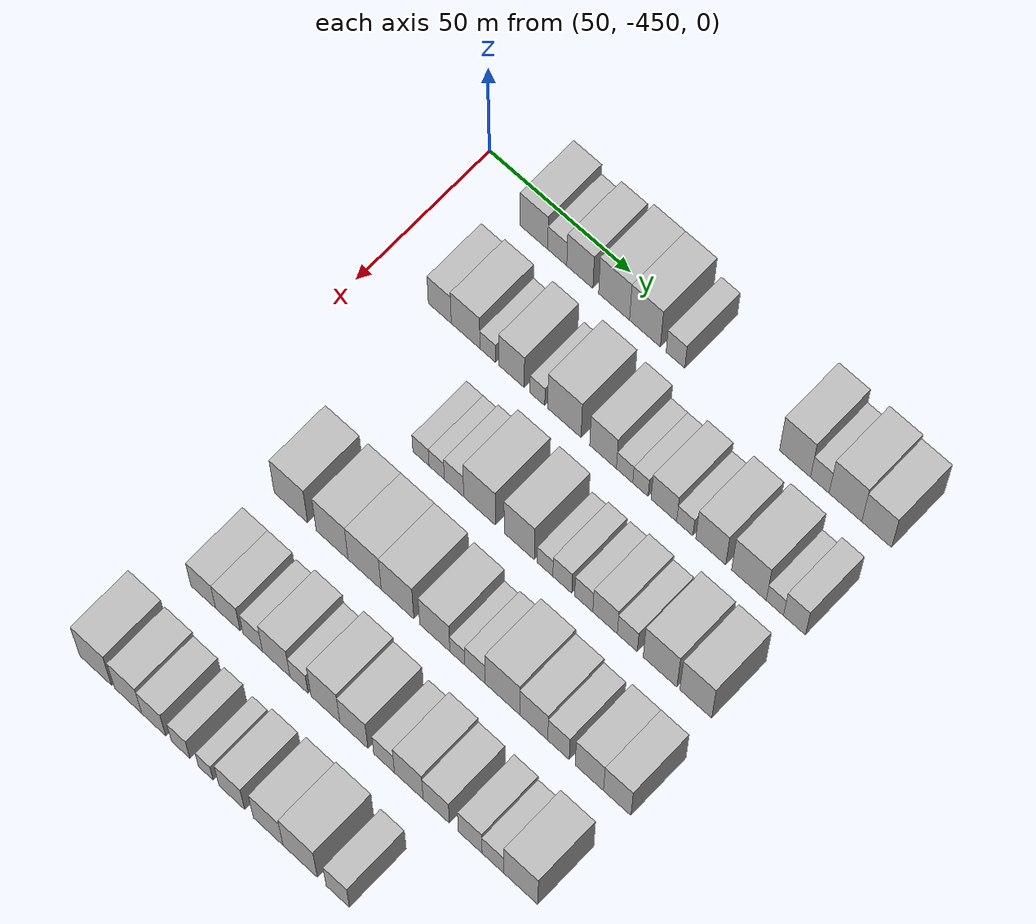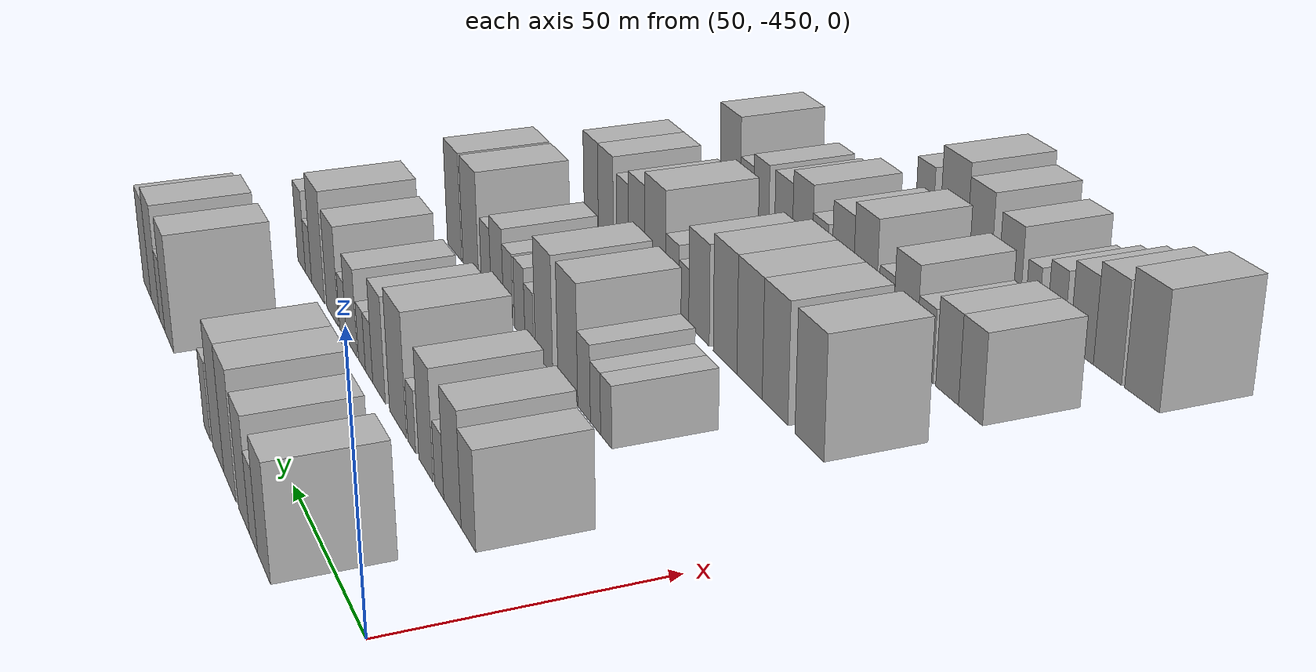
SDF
<sdf version="1.6">
 <world name="default">
  <model name="building_13">
   <static>1</static>
   <pose>50.0000 -424.9100 0 0.000000 0.000000 0.000000</pose>
   <link name="link">
    <pose>0 0 10.50 0 0 0</pose>
    <collision name="collision"><geometry><box><size>20.0000 9.8479 21.0000</size></box></geometry></collision>
    <visual name="visual">
     <cast_shadows>0</cast_shadows>
     <geometry><box><size>20.0000 9.8479 21.0000</size></box></geometry>
     <material>
      <script>
       <uri>model://HANNAS_wall/materials/scripts</uri>
       <uri>model://HANNAS_wall/materials/textures</uri>
       <name>vrc/HANNAS_wall</name>
      </script>
     </material>
    </visual>
   </link>
  </model>
  <model name="building_14">
   <static>1</static>
   <pose>50.0000 -416.6208 0 0.000000 0.000000 0.000000</pose>
   <link name="link">
    <pose>0 0 7.50 0 0 0</pose>
    <collision name="collision"><geometry><box><size>20.0000 6.7304 15.0000</size></box></geometry></collision>
    <visual name="visual">
     <cast_shadows>0</cast_shadows>
     <geometry><box><size>20.0000 6.7304 15.0000</size></box></geometry>
     <material>
      <script>
       <uri>model://HANNAS_wall/materials/scripts</uri>
       <uri>model://HANNAS_wall/materials/textures</uri>
       <name>vrc/HANNAS_wall</name>
      </script>
     </material>
    </visual>
   </link>
  </model>
  <model name="building_15">
   <static>1</static>
   <pose>50.0000 -408.6573 0 0.000000 0.000000 0.000000</pose>
   <link name="link">
    <pose>0 0 10.50 0 0 0</pose>
    <collision name="collision"><geometry><box><size>20.0000 9.1966 21.0000</size></box></geometry></collision>
    <visual name="visual">
     <cast_shadows>0</cast_shadows>
     <geometry><box><size>20.0000 9.1966 21.0000</size></box></geometry>
     <material>
      <script>
       <uri>model://HANNAS_wall/materials/scripts</uri>
       <uri>model://HANNAS_wall/materials/textures</uri>
       <name>vrc/HANNAS_wall</name>
      </script>
     </material>
    </visual>
   </link>
  </model>
  <model name="building_16">
   <static>1</static>
   <pose>50.0000 -396.6379 0 0.000000 0.000000 0.000000</pose>
   <link name="link">
    <pose>0 0 12.00 0 0 0</pose>
    <collision name="collision"><geometry><box><size>20.0000 10.8422 24.0000</size></box></geometry></collision>
    <visual name="visual">
     <cast_shadows>0</cast_shadows>
     <geometry><box><size>20.0000 10.8422 24.0000</size></box></geometry>
     <material>
      <script>
       <uri>model://HANNAS_wall/materials/scripts</uri>
       <uri>model://HANNAS_wall/materials/textures</uri>
       <name>vrc/HANNAS_wall</name>
      </script>
     </material>
    </visual>
   </link>
  </model>
  <model name="building_17">
   <static>1</static>
   <pose>50.0000 -385.8478 0 0.000000 0.000000 0.000000</pose>
   <link name="link">
    <pose>0 0 12.00 0 0 0</pose>
    <collision name="collision"><geometry><box><size>20.0000 10.7379 24.0000</size></box></geometry></collision>
    <visual name="visual">
     <cast_shadows>0</cast_shadows>
     <geometry><box><size>20.0000 10.7379 24.0000</size></box></geometry>
     <material>
      <script>
       <uri>model://HANNAS_wall/materials/scripts</uri>
       <uri>model://HANNAS_wall/materials/textures</uri>
       <name>vrc/HANNAS_wall</name>
      </script>
     </material>
    </visual>
   </link>
  </model>
  <model name="building_18">
   <static>1</static>
   <pose>50.0000 -375.2231 0 0.000000 0.000000 0.000000</pose>
   <link name="link">
    <pose>0 0 7.50 0 0 0</pose>
    <collision name="collision"><geometry><box><size>20.0000 6.5116 15.0000</size></box></geometry></collision>
    <visual name="visual">
     <cast_shadows>0</cast_shadows>
     <geometry><box><size>20.0000 6.5116 15.0000</size></box></geometry>
     <material>
      <script>
       <uri>model://HANNAS_wall/materials/scripts</uri>
       <uri>model://HANNAS_wall/materials/textures</uri>
       <name>vrc/HANNAS_wall</name>
      </script>
     </material>
    </visual>
   </link>
  </model>
  <model name="building_19">
   <static>1</static>
   <pose>50.0000 -334.1305 0 0.000000 0.000000 0.000000</pose>
   <link name="link">
    <pose>0 0 12.00 0 0 0</pose>
    <collision name="collision"><geometry><box><size>20.0000 10.5579 24.0000</size></box></geometry></collision>
    <visual name="visual">
     <cast_shadows>0</cast_shadows>
     <geometry><box><size>20.0000 10.5579 24.0000</size></box></geometry>
     <material>
      <script>
       <uri>model://HANNAS_wall/materials/scripts</uri>
       <uri>model://HANNAS_wall/materials/textures</uri>
       <name>vrc/HANNAS_wall</name>
      </script>
     </material>
    </visual>
   </link>
  </model>
  <model name="building_20">
   <static>1</static>
   <pose>50.0000 -325.7065 0 0.000000 0.000000 0.000000</pose>
   <link name="link">
    <pose>0 0 7.50 0 0 0</pose>
    <collision name="collision"><geometry><box><size>20.0000 6.2900 15.0000</size></box></geometry></collision>
    <visual name="visual">
     <cast_shadows>0</cast_shadows>
     <geometry><box><size>20.0000 6.2900 15.0000</size></box></geometry>
     <material>
      <script>
       <uri>model://HANNAS_wall/materials/scripts</uri>
       <uri>model://HANNAS_wall/materials/textures</uri>
       <name>vrc/HANNAS_wall</name>
      </script>
     </material>
    </visual>
   </link>
  </model>
  <model name="building_21">
   <static>1</static>
   <pose>50.0000 -317.0275 0 0.000000 0.000000 0.000000</pose>
   <link name="link">
    <pose>0 0 12.00 0 0 0</pose>
    <collision name="collision"><geometry><box><size>20.0000 11.0679 24.0000</size></box></geometry></collision>
    <visual name="visual">
     <cast_shadows>0</cast_shadows>
     <geometry><box><size>20.0000 11.0679 24.0000</size></box></geometry>
     <material>
      <script>
       <uri>model://HANNAS_wall/materials/scripts</uri>
       <uri>model://HANNAS_wall/materials/textures</uri>
       <name>vrc/HANNAS_wall</name>
      </script>
     </material>
    </visual>
   </link>
  </model>
  <model name="building_22">
   <static>1</static>
   <pose>50.0000 -306.4596 0 0.000000 0.000000 0.000000</pose>
   <link name="link">
    <pose>0 0 10.50 0 0 0</pose>
    <collision name="collision"><geometry><box><size>20.0000 10.0678 21.0000</size></box></geometry></collision>
    <visual name="visual">
     <cast_shadows>0</cast_shadows>
     <geometry><box><size>20.0000 10.0678 21.0000</size></box></geometry>
     <material>
      <script>
       <uri>model://HANNAS_wall/materials/scripts</uri>
       <uri>model://HANNAS_wall/materials/textures</uri>
       <name>vrc/HANNAS_wall</name>
      </script>
     </material>
    </visual>
   </link>
  </model>
  <model name="building_128">
   <static>1</static>
   <pose>82.0000 -427.9666 0 0.000000 0.000000 0.000000</pose>
   <link name="link">
    <pose>0 0 9.00 0 0 0</pose>
    <collision name="collision"><geometry><box><size>20.0000 8.1594 18.0000</size></box></geometry></collision>
    <visual name="visual">
     <cast_shadows>0</cast_shadows>
     <geometry><box><size>20.0000 8.1594 18.0000</size></box></geometry>
     <material>
      <script>
       <uri>model://HANNAS_wall/materials/scripts</uri>
       <uri>model://HANNAS_wall/materials/textures</uri>
       <name>vrc/HANNAS_wall</name>
      </script>
     </material>
    </visual>
   </link>
  </model>
  <model name="building_129">
   <static>1</static>
   <pose>82.0000 -418.8209 0 0.000000 0.000000 0.000000</pose>
   <link name="link">
    <pose>0 0 10.50 0 0 0</pose>
    <collision name="collision"><geometry><box><size>20.0000 10.1321 21.0000</size></box></geometry></collision>
    <visual name="visual">
     <cast_shadows>0</cast_shadows>
     <geometry><box><size>20.0000 10.1321 21.0000</size></box></geometry>
     <material>
      <script>
       <uri>model://HANNAS_wall/materials/scripts</uri>
       <uri>model://HANNAS_wall/materials/textures</uri>
       <name>vrc/HANNAS_wall</name>
      </script>
     </material>
    </visual>
   </link>
  </model>
  <model name="building_130">
   <static>1</static>
   <pose>82.0000 -410.9679 0 0.000000 0.000000 0.000000</pose>
   <link name="link">
    <pose>0 0 6.00 0 0 0</pose>
    <collision name="collision"><geometry><box><size>20.0000 5.5739 12.0000</size></box></geometry></collision>
    <visual name="visual">
     <cast_shadows>0</cast_shadows>
     <geometry><box><size>20.0000 5.5739 12.0000</size></box></geometry>
     <material>
      <script>
       <uri>model://HANNAS_wall/materials/scripts</uri>
       <uri>model://HANNAS_wall/materials/textures</uri>
       <name>vrc/HANNAS_wall</name>
      </script>
     </material>
    </visual>
   </link>
  </model>
  <model name="building_131">
   <static>1</static>
   <pose>82.0000 -402.6836 0 0.000000 0.000000 0.000000</pose>
   <link name="link">
    <pose>0 0 10.50 0 0 0</pose>
    <collision name="collision"><geometry><box><size>20.0000 8.9948 21.0000</size></box></geometry></collision>
    <visual name="visual">
     <cast_shadows>0</cast_shadows>
     <geometry><box><size>20.0000 8.9948 21.0000</size></box></geometry>
     <material>
      <script>
       <uri>model://HANNAS_wall/materials/scripts</uri>
       <uri>model://HANNAS_wall/materials/textures</uri>
       <name>vrc/HANNAS_wall</name>
      </script>
     </material>
    </visual>
   </link>
  </model>
  <model name="building_132">
   <static>1</static>
   <pose>82.0000 -393.6144 0 0.000000 0.000000 0.000000</pose>
   <link name="link">
    <pose>0 0 6.00 0 0 0</pose>
    <collision name="collision"><geometry><box><size>20.0000 5.1436 12.0000</size></box></geometry></collision>
    <visual name="visual">
     <cast_shadows>0</cast_shadows>
     <geometry><box><size>20.0000 5.1436 12.0000</size></box></geometry>
     <material>
      <script>
       <uri>model://HANNAS_wall/materials/scripts</uri>
       <uri>model://HANNAS_wall/materials/textures</uri>
       <name>vrc/HANNAS_wall</name>
      </script>
     </material>
    </visual>
   </link>
  </model>
  <model name="building_133">
   <static>1</static>
   <pose>82.0000 -384.2282 0 0.000000 0.000000 0.000000</pose>
   <link name="link">
    <pose>0 0 12.00 0 0 0</pose>
    <collision name="collision"><geometry><box><size>20.0000 11.6287 24.0000</size></box></geometry></collision>
    <visual name="visual">
     <cast_shadows>0</cast_shadows>
     <geometry><box><size>20.0000 11.6287 24.0000</size></box></geometry>
     <material>
      <script>
       <uri>model://HANNAS_wall/materials/scripts</uri>
       <uri>model://HANNAS_wall/materials/textures</uri>
       <name>vrc/HANNAS_wall</name>
      </script>
     </material>
    </visual>
   </link>
  </model>
  <model name="building_134">
   <static>1</static>
   <pose>82.0000 -370.8042 0 0.000000 0.000000 0.000000</pose>
   <link name="link">
    <pose>0 0 10.50 0 0 0</pose>
    <collision name="collision"><geometry><box><size>20.0000 9.2194 21.0000</size></box></geometry></collision>
    <visual name="visual">
     <cast_shadows>0</cast_shadows>
     <geometry><box><size>20.0000 9.2194 21.0000</size></box></geometry>
     <material>
      <script>
       <uri>model://HANNAS_wall/materials/scripts</uri>
       <uri>model://HANNAS_wall/materials/textures</uri>
       <name>vrc/HANNAS_wall</name>
      </script>
     </material>
    </visual>
   </link>
  </model>
  <model name="building_135">
   <static>1</static>
   <pose>82.0000 -363.3767 0 0.000000 0.000000 0.000000</pose>
   <link name="link">
    <pose>0 0 6.00 0 0 0</pose>
    <collision name="collision"><geometry><box><size>20.0000 5.6356 12.0000</size></box></geometry></collision>
    <visual name="visual">
     <cast_shadows>0</cast_shadows>
     <geometry><box><size>20.0000 5.6356 12.0000</size></box></geometry>
     <material>
      <script>
       <uri>model://HANNAS_wall/materials/scripts</uri>
       <uri>model://HANNAS_wall/materials/textures</uri>
       <name>vrc/HANNAS_wall</name>
      </script>
     </material>
    </visual>
   </link>
  </model>
  <model name="building_136">
   <static>1</static>
   <pose>82.0000 -357.9130 0 0.000000 0.000000 0.000000</pose>
   <link name="link">
    <pose>0 0 6.00 0 0 0</pose>
    <collision name="collision"><geometry><box><size>20.0000 5.2917 12.0000</size></box></geometry></collision>
    <visual name="visual">
     <cast_shadows>0</cast_shadows>
     <geometry><box><size>20.0000 5.2917 12.0000</size></box></geometry>
     <material>
      <script>
       <uri>model://HANNAS_wall/materials/scripts</uri>
       <uri>model://HANNAS_wall/materials/textures</uri>
       <name>vrc/HANNAS_wall</name>
      </script>
     </material>
    </visual>
   </link>
  </model>
  <model name="building_137">
   <static>1</static>
   <pose>82.0000 -349.8831 0 0.000000 0.000000 0.000000</pose>
   <link name="link">
    <pose>0 0 9.00 0 0 0</pose>
    <collision name="collision"><geometry><box><size>20.0000 8.7682 18.0000</size></box></geometry></collision>
    <visual name="visual">
     <cast_shadows>0</cast_shadows>
     <geometry><box><size>20.0000 8.7682 18.0000</size></box></geometry>
     <material>
      <script>
       <uri>model://HANNAS_wall/materials/scripts</uri>
       <uri>model://HANNAS_wall/materials/textures</uri>
       <name>vrc/HANNAS_wall</name>
      </script>
     </material>
    </visual>
   </link>
  </model>
  <model name="building_138">
   <static>1</static>
   <pose>82.0000 -342.7308 0 0.000000 0.000000 0.000000</pose>
   <link name="link">
    <pose>0 0 6.00 0 0 0</pose>
    <collision name="collision"><geometry><box><size>20.0000 5.5363 12.0000</size></box></geometry></collision>
    <visual name="visual">
     <cast_shadows>0</cast_shadows>
     <geometry><box><size>20.0000 5.5363 12.0000</size></box></geometry>
     <material>
      <script>
       <uri>model://HANNAS_wall/materials/scripts</uri>
       <uri>model://HANNAS_wall/materials/textures</uri>
       <name>vrc/HANNAS_wall</name>
      </script>
     </material>
    </visual>
   </link>
  </model>
  <model name="building_139">
   <static>1</static>
   <pose>82.0000 -333.8696 0 0.000000 0.000000 0.000000</pose>
   <link name="link">
    <pose>0 0 10.50 0 0 0</pose>
    <collision name="collision"><geometry><box><size>20.0000 10.1862 21.0000</size></box></geometry></collision>
    <visual name="visual">
     <cast_shadows>0</cast_shadows>
     <geometry><box><size>20.0000 10.1862 21.0000</size></box></geometry>
     <material>
      <script>
       <uri>model://HANNAS_wall/materials/scripts</uri>
       <uri>model://HANNAS_wall/materials/textures</uri>
       <name>vrc/HANNAS_wall</name>
      </script>
     </material>
    </visual>
   </link>
  </model>
  <model name="building_140">
   <static>1</static>
   <pose>82.0000 -320.9263 0 0.000000 0.000000 0.000000</pose>
   <link name="link">
    <pose>0 0 12.00 0 0 0</pose>
    <collision name="collision"><geometry><box><size>20.0000 11.7004 24.0000</size></box></geometry></collision>
    <visual name="visual">
     <cast_shadows>0</cast_shadows>
     <geometry><box><size>20.0000 11.7004 24.0000</size></box></geometry>
     <material>
      <script>
       <uri>model://HANNAS_wall/materials/scripts</uri>
       <uri>model://HANNAS_wall/materials/textures</uri>
       <name>vrc/HANNAS_wall</name>
      </script>
     </material>
    </visual>
   </link>
  </model>
  <model name="building_141">
   <static>1</static>
   <pose>82.0000 -312.1546 0 0.000000 0.000000 0.000000</pose>
   <link name="link">
    <pose>0 0 6.00 0 0 0</pose>
    <collision name="collision"><geometry><box><size>20.0000 5.8429 12.0000</size></box></geometry></collision>
    <visual name="visual">
     <cast_shadows>0</cast_shadows>
     <geometry><box><size>20.0000 5.8429 12.0000</size></box></geometry>
     <material>
      <script>
       <uri>model://HANNAS_wall/materials/scripts</uri>
       <uri>model://HANNAS_wall/materials/textures</uri>
       <name>vrc/HANNAS_wall</name>
      </script>
     </material>
    </visual>
   </link>
  </model>
  <model name="building_142">
   <static>1</static>
   <pose>82.0000 -305.5435 0 0.000000 0.000000 0.000000</pose>
   <link name="link">
    <pose>0 0 9.00 0 0 0</pose>
    <collision name="collision"><geometry><box><size>20.0000 7.3793 18.0000</size></box></geometry></collision>
    <visual name="visual">
     <cast_shadows>0</cast_shadows>
     <geometry><box><size>20.0000 7.3793 18.0000</size></box></geometry>
     <material>
      <script>
       <uri>model://HANNAS_wall/materials/scripts</uri>
       <uri>model://HANNAS_wall/materials/textures</uri>
       <name>vrc/HANNAS_wall</name>
      </script>
     </material>
    </visual>
   </link>
  </model>
  <model name="building_256">
   <static>1</static>
   <pose>114.0000 -404.0442 0 0.000000 0.000000 0.000000</pose>
   <link name="link">
    <pose>0 0 6.00 0 0 0</pose>
    <collision name="collision"><geometry><box><size>20.0000 5.6613 12.0000</size></box></geometry></collision>
    <visual name="visual">
     <cast_shadows>0</cast_shadows>
     <geometry><box><size>20.0000 5.6613 12.0000</size></box></geometry>
     <material>
      <script>
       <uri>model://HANNAS_wall/materials/scripts</uri>
       <uri>model://HANNAS_wall/materials/textures</uri>
       <name>vrc/HANNAS_wall</name>
      </script>
     </material>
    </visual>
   </link>
  </model>
  <model name="building_257">
   <static>1</static>
   <pose>114.0000 -398.5400 0 0.000000 0.000000 0.000000</pose>
   <link name="link">
    <pose>0 0 6.00 0 0 0</pose>
    <collision name="collision"><geometry><box><size>20.0000 5.3472 12.0000</size></box></geometry></collision>
    <visual name="visual">
     <cast_shadows>0</cast_shadows>
     <geometry><box><size>20.0000 5.3472 12.0000</size></box></geometry>
     <material>
      <script>
       <uri>model://HANNAS_wall/materials/scripts</uri>
       <uri>model://HANNAS_wall/materials/textures</uri>
       <name>vrc/HANNAS_wall</name>
      </script>
     </material>
    </visual>
   </link>
  </model>
  <model name="building_258">
   <static>1</static>
   <pose>114.0000 -392.4809 0 0.000000 0.000000 0.000000</pose>
   <link name="link">
    <pose>0 0 7.50 0 0 0</pose>
    <collision name="collision"><geometry><box><size>20.0000 6.7709 15.0000</size></box></geometry></collision>
    <visual name="visual">
     <cast_shadows>0</cast_shadows>
     <geometry><box><size>20.0000 6.7709 15.0000</size></box></geometry>
     <material>
      <script>
       <uri>model://HANNAS_wall/materials/scripts</uri>
       <uri>model://HANNAS_wall/materials/textures</uri>
       <name>vrc/HANNAS_wall</name>
      </script>
     </material>
    </visual>
   </link>
  </model>
  <model name="building_259">
   <static>1</static>
   <pose>114.0000 -383.5652 0 0.000000 0.000000 0.000000</pose>
   <link name="link">
    <pose>0 0 12.00 0 0 0</pose>
    <collision name="collision"><geometry><box><size>20.0000 11.0605 24.0000</size></box></geometry></collision>
    <visual name="visual">
     <cast_shadows>0</cast_shadows>
     <geometry><box><size>20.0000 11.0605 24.0000</size></box></geometry>
     <material>
      <script>
       <uri>model://HANNAS_wall/materials/scripts</uri>
       <uri>model://HANNAS_wall/materials/textures</uri>
       <name>vrc/HANNAS_wall</name>
      </script>
     </material>
    </visual>
   </link>
  </model>
  <model name="building_260">
   <static>1</static>
   <pose>114.0000 -369.8477 0 0.000000 0.000000 0.000000</pose>
   <link name="link">
    <pose>0 0 12.00 0 0 0</pose>
    <collision name="collision"><geometry><box><size>20.0000 10.3744 24.0000</size></box></geometry></collision>
    <visual name="visual">
     <cast_shadows>0</cast_shadows>
     <geometry><box><size>20.0000 10.3744 24.0000</size></box></geometry>
     <material>
      <script>
       <uri>model://HANNAS_wall/materials/scripts</uri>
       <uri>model://HANNAS_wall/materials/textures</uri>
       <name>vrc/HANNAS_wall</name>
      </script>
     </material>
    </visual>
   </link>
  </model>
  <model name="building_261">
   <static>1</static>
   <pose>114.0000 -360.9784 0 0.000000 0.000000 0.000000</pose>
   <link name="link">
    <pose>0 0 6.00 0 0 0</pose>
    <collision name="collision"><geometry><box><size>20.0000 5.3643 12.0000</size></box></geometry></collision>
    <visual name="visual">
     <cast_shadows>0</cast_shadows>
     <geometry><box><size>20.0000 5.3643 12.0000</size></box></geometry>
     <material>
      <script>
       <uri>model://HANNAS_wall/materials/scripts</uri>
       <uri>model://HANNAS_wall/materials/textures</uri>
       <name>vrc/HANNAS_wall</name>
      </script>
     </material>
    </visual>
   </link>
  </model>
  <model name="building_262">
   <static>1</static>
   <pose>114.0000 -355.0479 0 0.000000 0.000000 0.000000</pose>
   <link name="link">
    <pose>0 0 7.50 0 0 0</pose>
    <collision name="collision"><geometry><box><size>20.0000 6.4966 15.0000</size></box></geometry></collision>
    <visual name="visual">
     <cast_shadows>0</cast_shadows>
     <geometry><box><size>20.0000 6.4966 15.0000</size></box></geometry>
     <material>
      <script>
       <uri>model://HANNAS_wall/materials/scripts</uri>
       <uri>model://HANNAS_wall/materials/textures</uri>
       <name>vrc/HANNAS_wall</name>
      </script>
     </material>
    </visual>
   </link>
  </model>
  <model name="building_263">
   <static>1</static>
   <pose>114.0000 -347.7049 0 0.000000 0.000000 0.000000</pose>
   <link name="link">
    <pose>0 0 7.50 0 0 0</pose>
    <collision name="collision"><geometry><box><size>20.0000 6.1894 15.0000</size></box></geometry></collision>
    <visual name="visual">
     <cast_shadows>0</cast_shadows>
     <geometry><box><size>20.0000 6.1894 15.0000</size></box></geometry>
     <material>
      <script>
       <uri>model://HANNAS_wall/materials/scripts</uri>
       <uri>model://HANNAS_wall/materials/textures</uri>
       <name>vrc/HANNAS_wall</name>
      </script>
     </material>
    </visual>
   </link>
  </model>
  <model name="building_264">
   <static>1</static>
   <pose>114.0000 -340.4233 0 0.000000 0.000000 0.000000</pose>
   <link name="link">
    <pose>0 0 9.00 0 0 0</pose>
    <collision name="collision"><geometry><box><size>20.0000 8.3737 18.0000</size></box></geometry></collision>
    <visual name="visual">
     <cast_shadows>0</cast_shadows>
     <geometry><box><size>20.0000 8.3737 18.0000</size></box></geometry>
     <material>
      <script>
       <uri>model://HANNAS_wall/materials/scripts</uri>
       <uri>model://HANNAS_wall/materials/textures</uri>
       <name>vrc/HANNAS_wall</name>
      </script>
     </material>
    </visual>
   </link>
  </model>
  <model name="building_265">
   <static>1</static>
   <pose>114.0000 -332.8501 0 0.000000 0.000000 0.000000</pose>
   <link name="link">
    <pose>0 0 7.50 0 0 0</pose>
    <collision name="collision"><geometry><box><size>20.0000 6.7725 15.0000</size></box></geometry></collision>
    <visual name="visual">
     <cast_shadows>0</cast_shadows>
     <geometry><box><size>20.0000 6.7725 15.0000</size></box></geometry>
     <material>
      <script>
       <uri>model://HANNAS_wall/materials/scripts</uri>
       <uri>model://HANNAS_wall/materials/textures</uri>
       <name>vrc/HANNAS_wall</name>
      </script>
     </material>
    </visual>
   </link>
  </model>
  <model name="building_266">
   <static>1</static>
   <pose>114.0000 -321.7629 0 0.000000 0.000000 0.000000</pose>
   <link name="link">
    <pose>0 0 12.00 0 0 0</pose>
    <collision name="collision"><geometry><box><size>20.0000 11.4020 24.0000</size></box></geometry></collision>
    <visual name="visual">
     <cast_shadows>0</cast_shadows>
     <geometry><box><size>20.0000 11.4020 24.0000</size></box></geometry>
     <material>
      <script>
       <uri>model://HANNAS_wall/materials/scripts</uri>
       <uri>model://HANNAS_wall/materials/textures</uri>
       <name>vrc/HANNAS_wall</name>
      </script>
     </material>
    </visual>
   </link>
  </model>
  <model name="building_267">
   <static>1</static>
   <pose>114.0000 -309.7037 0 0.000000 0.000000 0.000000</pose>
   <link name="link">
    <pose>0 0 12.00 0 0 0</pose>
    <collision name="collision"><geometry><box><size>20.0000 10.7164 24.0000</size></box></geometry></collision>
    <visual name="visual">
     <cast_shadows>0</cast_shadows>
     <geometry><box><size>20.0000 10.7164 24.0000</size></box></geometry>
     <material>
      <script>
       <uri>model://HANNAS_wall/materials/scripts</uri>
       <uri>model://HANNAS_wall/materials/textures</uri>
       <name>vrc/HANNAS_wall</name>
      </script>
     </material>
    </visual>
   </link>
  </model>
  <model name="building_371">
   <static>1</static>
   <pose>146.0000 -418.8518 0 0.000000 0.000000 0.000000</pose>
   <link name="link">
    <pose>0 0 12.00 0 0 0</pose>
    <collision name="collision"><geometry><box><size>20.0000 11.7782 24.0000</size></box></geometry></collision>
    <visual name="visual">
     <cast_shadows>0</cast_shadows>
     <geometry><box><size>20.0000 11.7782 24.0000</size></box></geometry>
     <material>
      <script>
       <uri>model://HANNAS_wall/materials/scripts</uri>
       <uri>model://HANNAS_wall/materials/textures</uri>
       <name>vrc/HANNAS_wall</name>
      </script>
     </material>
    </visual>
   </link>
  </model>
  <model name="building_372">
   <static>1</static>
   <pose>146.0000 -404.3838 0 0.000000 0.000000 0.000000</pose>
   <link name="link">
    <pose>0 0 12.00 0 0 0</pose>
    <collision name="collision"><geometry><box><size>20.0000 11.1579 24.0000</size></box></geometry></collision>
    <visual name="visual">
     <cast_shadows>0</cast_shadows>
     <geometry><box><size>20.0000 11.1579 24.0000</size></box></geometry>
     <material>
      <script>
       <uri>model://HANNAS_wall/materials/scripts</uri>
       <uri>model://HANNAS_wall/materials/textures</uri>
       <name>vrc/HANNAS_wall</name>
      </script>
     </material>
    </visual>
   </link>
  </model>
  <model name="building_373">
   <static>1</static>
   <pose>146.0000 -393.0157 0 0.000000 0.000000 0.000000</pose>
   <link name="link">
    <pose>0 0 12.00 0 0 0</pose>
    <collision name="collision"><geometry><box><size>20.0000 11.5784 24.0000</size></box></geometry></collision>
    <visual name="visual">
     <cast_shadows>0</cast_shadows>
     <geometry><box><size>20.0000 11.5784 24.0000</size></box></geometry>
     <material>
      <script>
       <uri>model://HANNAS_wall/materials/scripts</uri>
       <uri>model://HANNAS_wall/materials/textures</uri>
       <name>vrc/HANNAS_wall</name>
      </script>
     </material>
    </visual>
   </link>
  </model>
  <model name="building_374">
   <static>1</static>
   <pose>146.0000 -381.5420 0 0.000000 0.000000 0.000000</pose>
   <link name="link">
    <pose>0 0 12.00 0 0 0</pose>
    <collision name="collision"><geometry><box><size>20.0000 11.3690 24.0000</size></box></geometry></collision>
    <visual name="visual">
     <cast_shadows>0</cast_shadows>
     <geometry><box><size>20.0000 11.3690 24.0000</size></box></geometry>
     <material>
      <script>
       <uri>model://HANNAS_wall/materials/scripts</uri>
       <uri>model://HANNAS_wall/materials/textures</uri>
       <name>vrc/HANNAS_wall</name>
      </script>
     </material>
    </visual>
   </link>
  </model>
  <model name="building_375">
   <static>1</static>
   <pose>146.0000 -368.6620 0 0.000000 0.000000 0.000000</pose>
   <link name="link">
    <pose>0 0 10.50 0 0 0</pose>
    <collision name="collision"><geometry><box><size>20.0000 10.3909 21.0000</size></box></geometry></collision>
    <visual name="visual">
     <cast_shadows>0</cast_shadows>
     <geometry><box><size>20.0000 10.3909 21.0000</size></box></geometry>
     <material>
      <script>
       <uri>model://HANNAS_wall/materials/scripts</uri>
       <uri>model://HANNAS_wall/materials/textures</uri>
       <name>vrc/HANNAS_wall</name>
      </script>
     </material>
    </visual>
   </link>
  </model>
  <model name="building_376">
   <static>1</static>
   <pose>146.0000 -360.8914 0 0.000000 0.000000 0.000000</pose>
   <link name="link">
    <pose>0 0 6.00 0 0 0</pose>
    <collision name="collision"><geometry><box><size>20.0000 5.1503 12.0000</size></box></geometry></collision>
    <visual name="visual">
     <cast_shadows>0</cast_shadows>
     <geometry><box><size>20.0000 5.1503 12.0000</size></box></geometry>
     <material>
      <script>
       <uri>model://HANNAS_wall/materials/scripts</uri>
       <uri>model://HANNAS_wall/materials/textures</uri>
       <name>vrc/HANNAS_wall</name>
      </script>
     </material>
    </visual>
   </link>
  </model>
  <model name="building_377">
   <static>1</static>
   <pose>146.0000 -354.8184 0 0.000000 0.000000 0.000000</pose>
   <link name="link">
    <pose>0 0 7.50 0 0 0</pose>
    <collision name="collision"><geometry><box><size>20.0000 6.9958 15.0000</size></box></geometry></collision>
    <visual name="visual">
     <cast_shadows>0</cast_shadows>
     <geometry><box><size>20.0000 6.9958 15.0000</size></box></geometry>
     <material>
      <script>
       <uri>model://HANNAS_wall/materials/scripts</uri>
       <uri>model://HANNAS_wall/materials/textures</uri>
       <name>vrc/HANNAS_wall</name>
      </script>
     </material>
    </visual>
   </link>
  </model>
  <model name="building_378">
   <static>1</static>
   <pose>146.0000 -345.4421 0 0.000000 0.000000 0.000000</pose>
   <link name="link">
    <pose>0 0 12.00 0 0 0</pose>
    <collision name="collision"><geometry><box><size>20.0000 11.7567 24.0000</size></box></geometry></collision>
    <visual name="visual">
     <cast_shadows>0</cast_shadows>
     <geometry><box><size>20.0000 11.7567 24.0000</size></box></geometry>
     <material>
      <script>
       <uri>model://HANNAS_wall/materials/scripts</uri>
       <uri>model://HANNAS_wall/materials/textures</uri>
       <name>vrc/HANNAS_wall</name>
      </script>
     </material>
    </visual>
   </link>
  </model>
  <model name="building_379">
   <static>1</static>
   <pose>146.0000 -334.8085 0 0.000000 0.000000 0.000000</pose>
   <link name="link">
    <pose>0 0 10.50 0 0 0</pose>
    <collision name="collision"><geometry><box><size>20.0000 9.5105 21.0000</size></box></geometry></collision>
    <visual name="visual">
     <cast_shadows>0</cast_shadows>
     <geometry><box><size>20.0000 9.5105 21.0000</size></box></geometry>
     <material>
      <script>
       <uri>model://HANNAS_wall/materials/scripts</uri>
       <uri>model://HANNAS_wall/materials/textures</uri>
       <name>vrc/HANNAS_wall</name>
      </script>
     </material>
    </visual>
   </link>
  </model>
  <model name="building_380">
   <static>1</static>
   <pose>146.0000 -326.4280 0 0.000000 0.000000 0.000000</pose>
   <link name="link">
    <pose>0 0 9.00 0 0 0</pose>
    <collision name="collision"><geometry><box><size>20.0000 7.2506 18.0000</size></box></geometry></collision>
    <visual name="visual">
     <cast_shadows>0</cast_shadows>
     <geometry><box><size>20.0000 7.2506 18.0000</size></box></geometry>
     <material>
      <script>
       <uri>model://HANNAS_wall/materials/scripts</uri>
       <uri>model://HANNAS_wall/materials/textures</uri>
       <name>vrc/HANNAS_wall</name>
      </script>
     </material>
    </visual>
   </link>
  </model>
  <model name="building_381">
   <static>1</static>
   <pose>146.0000 -316.0356 0 0.000000 0.000000 0.000000</pose>
   <link name="link">
    <pose>0 0 10.50 0 0 0</pose>
    <collision name="collision"><geometry><box><size>20.0000 9.5342 21.0000</size></box></geometry></collision>
    <visual name="visual">
     <cast_shadows>0</cast_shadows>
     <geometry><box><size>20.0000 9.5342 21.0000</size></box></geometry>
     <material>
      <script>
       <uri>model://HANNAS_wall/materials/scripts</uri>
       <uri>model://HANNAS_wall/materials/textures</uri>
       <name>vrc/HANNAS_wall</name>
      </script>
     </material>
    </visual>
   </link>
  </model>
  <model name="building_382">
   <static>1</static>
   <pose>146.0000 -306.6569 0 0.000000 0.000000 0.000000</pose>
   <link name="link">
    <pose>0 0 10.50 0 0 0</pose>
    <collision name="collision"><geometry><box><size>20.0000 9.2231 21.0000</size></box></geometry></collision>
    <visual name="visual">
     <cast_shadows>0</cast_shadows>
     <geometry><box><size>20.0000 9.2231 21.0000</size></box></geometry>
     <material>
      <script>
       <uri>model://HANNAS_wall/materials/scripts</uri>
       <uri>model://HANNAS_wall/materials/textures</uri>
       <name>vrc/HANNAS_wall</name>
      </script>
     </material>
    </visual>
   </link>
  </model>
  <model name="building_493">
   <static>1</static>
   <pose>178.0000 -418.2650 0 0.000000 0.000000 0.000000</pose>
   <link name="link">
    <pose>0 0 9.00 0 0 0</pose>
    <collision name="collision"><geometry><box><size>20.0000 8.7161 18.0000</size></box></geometry></collision>
    <visual name="visual">
     <cast_shadows>0</cast_shadows>
     <geometry><box><size>20.0000 8.7161 18.0000</size></box></geometry>
     <material>
      <script>
       <uri>model://HANNAS_wall/materials/scripts</uri>
       <uri>model://HANNAS_wall/materials/textures</uri>
       <name>vrc/HANNAS_wall</name>
      </script>
     </material>
    </visual>
   </link>
  </model>
  <model name="building_494">
   <static>1</static>
   <pose>178.0000 -409.6000 0 0.000000 0.000000 0.000000</pose>
   <link name="link">
    <pose>0 0 9.00 0 0 0</pose>
    <collision name="collision"><geometry><box><size>20.0000 8.6140 18.0000</size></box></geometry></collision>
    <visual name="visual">
     <cast_shadows>0</cast_shadows>
     <geometry><box><size>20.0000 8.6140 18.0000</size></box></geometry>
     <material>
      <script>
       <uri>model://HANNAS_wall/materials/scripts</uri>
       <uri>model://HANNAS_wall/materials/textures</uri>
       <name>vrc/HANNAS_wall</name>
      </script>
     </material>
    </visual>
   </link>
  </model>
  <model name="building_495">
   <static>1</static>
   <pose>178.0000 -400.8982 0 0.000000 0.000000 0.000000</pose>
   <link name="link">
    <pose>0 0 7.50 0 0 0</pose>
    <collision name="collision"><geometry><box><size>20.0000 6.7895 15.0000</size></box></geometry></collision>
    <visual name="visual">
     <cast_shadows>0</cast_shadows>
     <geometry><box><size>20.0000 6.7895 15.0000</size></box></geometry>
     <material>
      <script>
       <uri>model://HANNAS_wall/materials/scripts</uri>
       <uri>model://HANNAS_wall/materials/textures</uri>
       <name>vrc/HANNAS_wall</name>
      </script>
     </material>
    </visual>
   </link>
  </model>
  <model name="building_496">
   <static>1</static>
   <pose>178.0000 -392.7082 0 0.000000 0.000000 0.000000</pose>
   <link name="link">
    <pose>0 0 10.50 0 0 0</pose>
    <collision name="collision"><geometry><box><size>20.0000 9.5905 21.0000</size></box></geometry></collision>
    <visual name="visual">
     <cast_shadows>0</cast_shadows>
     <geometry><box><size>20.0000 9.5905 21.0000</size></box></geometry>
     <material>
      <script>
       <uri>model://HANNAS_wall/materials/scripts</uri>
       <uri>model://HANNAS_wall/materials/textures</uri>
       <name>vrc/HANNAS_wall</name>
      </script>
     </material>
    </visual>
   </link>
  </model>
  <model name="building_497">
   <static>1</static>
   <pose>178.0000 -384.7665 0 0.000000 0.000000 0.000000</pose>
   <link name="link">
    <pose>0 0 7.50 0 0 0</pose>
    <collision name="collision"><geometry><box><size>20.0000 6.2930 15.0000</size></box></geometry></collision>
    <visual name="visual">
     <cast_shadows>0</cast_shadows>
     <geometry><box><size>20.0000 6.2930 15.0000</size></box></geometry>
     <material>
      <script>
       <uri>model://HANNAS_wall/materials/scripts</uri>
       <uri>model://HANNAS_wall/materials/textures</uri>
       <name>vrc/HANNAS_wall</name>
      </script>
     </material>
    </visual>
   </link>
  </model>
  <model name="building_498">
   <static>1</static>
   <pose>178.0000 -375.6212 0 0.000000 0.000000 0.000000</pose>
   <link name="link">
    <pose>0 0 12.00 0 0 0</pose>
    <collision name="collision"><geometry><box><size>20.0000 9.9977 24.0000</size></box></geometry></collision>
    <visual name="visual">
     <cast_shadows>0</cast_shadows>
     <geometry><box><size>20.0000 9.9977 24.0000</size></box></geometry>
     <material>
      <script>
       <uri>model://HANNAS_wall/materials/scripts</uri>
       <uri>model://HANNAS_wall/materials/textures</uri>
       <name>vrc/HANNAS_wall</name>
      </script>
     </material>
    </visual>
   </link>
  </model>
  <model name="building_499">
   <static>1</static>
   <pose>178.0000 -365.7957 0 0.000000 0.000000 0.000000</pose>
   <link name="link">
    <pose>0 0 10.50 0 0 0</pose>
    <collision name="collision"><geometry><box><size>20.0000 9.6533 21.0000</size></box></geometry></collision>
    <visual name="visual">
     <cast_shadows>0</cast_shadows>
     <geometry><box><size>20.0000 9.6533 21.0000</size></box></geometry>
     <material>
      <script>
       <uri>model://HANNAS_wall/materials/scripts</uri>
       <uri>model://HANNAS_wall/materials/textures</uri>
       <name>vrc/HANNAS_wall</name>
      </script>
     </material>
    </visual>
   </link>
  </model>
  <model name="building_500">
   <static>1</static>
   <pose>178.0000 -355.4023 0 0.000000 0.000000 0.000000</pose>
   <link name="link">
    <pose>0 0 7.50 0 0 0</pose>
    <collision name="collision"><geometry><box><size>20.0000 7.1336 15.0000</size></box></geometry></collision>
    <visual name="visual">
     <cast_shadows>0</cast_shadows>
     <geometry><box><size>20.0000 7.1336 15.0000</size></box></geometry>
     <material>
      <script>
       <uri>model://HANNAS_wall/materials/scripts</uri>
       <uri>model://HANNAS_wall/materials/textures</uri>
       <name>vrc/HANNAS_wall</name>
      </script>
     </material>
    </visual>
   </link>
  </model>
  <model name="building_501">
   <static>1</static>
   <pose>178.0000 -346.9573 0 0.000000 0.000000 0.000000</pose>
   <link name="link">
    <pose>0 0 10.50 0 0 0</pose>
    <collision name="collision"><geometry><box><size>20.0000 9.7563 21.0000</size></box></geometry></collision>
    <visual name="visual">
     <cast_shadows>0</cast_shadows>
     <geometry><box><size>20.0000 9.7563 21.0000</size></box></geometry>
     <material>
      <script>
       <uri>model://HANNAS_wall/materials/scripts</uri>
       <uri>model://HANNAS_wall/materials/textures</uri>
       <name>vrc/HANNAS_wall</name>
      </script>
     </material>
    </visual>
   </link>
  </model>
  <model name="building_502">
   <static>1</static>
   <pose>178.0000 -337.6042 0 0.000000 0.000000 0.000000</pose>
   <link name="link">
    <pose>0 0 9.00 0 0 0</pose>
    <collision name="collision"><geometry><box><size>20.0000 8.9500 18.0000</size></box></geometry></collision>
    <visual name="visual">
     <cast_shadows>0</cast_shadows>
     <geometry><box><size>20.0000 8.9500 18.0000</size></box></geometry>
     <material>
      <script>
       <uri>model://HANNAS_wall/materials/scripts</uri>
       <uri>model://HANNAS_wall/materials/textures</uri>
       <name>vrc/HANNAS_wall</name>
      </script>
     </material>
    </visual>
   </link>
  </model>
  <model name="building_503">
   <static>1</static>
   <pose>178.0000 -326.1161 0 0.000000 0.000000 0.000000</pose>
   <link name="link">
    <pose>0 0 9.00 0 0 0</pose>
    <collision name="collision"><geometry><box><size>20.0000 8.0262 18.0000</size></box></geometry></collision>
    <visual name="visual">
     <cast_shadows>0</cast_shadows>
     <geometry><box><size>20.0000 8.0262 18.0000</size></box></geometry>
     <material>
      <script>
       <uri>model://HANNAS_wall/materials/scripts</uri>
       <uri>model://HANNAS_wall/materials/textures</uri>
       <name>vrc/HANNAS_wall</name>
      </script>
     </material>
    </visual>
   </link>
  </model>
  <model name="building_504">
   <static>1</static>
   <pose>178.0000 -318.4364 0 0.000000 0.000000 0.000000</pose>
   <link name="link">
    <pose>0 0 7.50 0 0 0</pose>
    <collision name="collision"><geometry><box><size>20.0000 7.3331 15.0000</size></box></geometry></collision>
    <visual name="visual">
     <cast_shadows>0</cast_shadows>
     <geometry><box><size>20.0000 7.3331 15.0000</size></box></geometry>
     <material>
      <script>
       <uri>model://HANNAS_wall/materials/scripts</uri>
       <uri>model://HANNAS_wall/materials/textures</uri>
       <name>vrc/HANNAS_wall</name>
      </script>
     </material>
    </visual>
   </link>
  </model>
  <model name="building_505">
   <static>1</static>
   <pose>178.0000 -309.0655 0 0.000000 0.000000 0.000000</pose>
   <link name="link">
    <pose>0 0 12.00 0 0 0</pose>
    <collision name="collision"><geometry><box><size>20.0000 11.4088 24.0000</size></box></geometry></collision>
    <visual name="visual">
     <cast_shadows>0</cast_shadows>
     <geometry><box><size>20.0000 11.4088 24.0000</size></box></geometry>
     <material>
      <script>
       <uri>model://HANNAS_wall/materials/scripts</uri>
       <uri>model://HANNAS_wall/materials/textures</uri>
       <name>vrc/HANNAS_wall</name>
      </script>
     </material>
    </visual>
   </link>
  </model>
  <model name="building_607">
   <static>1</static>
   <pose>210.0000 -424.1628 0 0.000000 0.000000 0.000000</pose>
   <link name="link">
    <pose>0 0 12.00 0 0 0</pose>
    <collision name="collision"><geometry><box><size>20.0000 11.2664 24.0000</size></box></geometry></collision>
    <visual name="visual">
     <cast_shadows>0</cast_shadows>
     <geometry><box><size>20.0000 11.2664 24.0000</size></box></geometry>
     <material>
      <script>
       <uri>model://HANNAS_wall/materials/scripts</uri>
       <uri>model://HANNAS_wall/materials/textures</uri>
       <name>vrc/HANNAS_wall</name>
      </script>
     </material>
    </visual>
   </link>
  </model>
  <model name="building_608">
   <static>1</static>
   <pose>210.0000 -412.7483 0 0.000000 0.000000 0.000000</pose>
   <link name="link">
    <pose>0 0 10.50 0 0 0</pose>
    <collision name="collision"><geometry><box><size>20.0000 9.5627 21.0000</size></box></geometry></collision>
    <visual name="visual">
     <cast_shadows>0</cast_shadows>
     <geometry><box><size>20.0000 9.5627 21.0000</size></box></geometry>
     <material>
      <script>
       <uri>model://HANNAS_wall/materials/scripts</uri>
       <uri>model://HANNAS_wall/materials/textures</uri>
       <name>vrc/HANNAS_wall</name>
      </script>
     </material>
    </visual>
   </link>
  </model>
  <model name="building_609">
   <static>1</static>
   <pose>210.0000 -403.7681 0 0.000000 0.000000 0.000000</pose>
   <link name="link">
    <pose>0 0 9.00 0 0 0</pose>
    <collision name="collision"><geometry><box><size>20.0000 8.3977 18.0000</size></box></geometry></collision>
    <visual name="visual">
     <cast_shadows>0</cast_shadows>
     <geometry><box><size>20.0000 8.3977 18.0000</size></box></geometry>
     <material>
      <script>
       <uri>model://HANNAS_wall/materials/scripts</uri>
       <uri>model://HANNAS_wall/materials/textures</uri>
       <name>vrc/HANNAS_wall</name>
      </script>
     </material>
    </visual>
   </link>
  </model>
  <model name="building_610">
   <static>1</static>
   <pose>210.0000 -394.3635 0 0.000000 0.000000 0.000000</pose>
   <link name="link">
    <pose>0 0 7.50 0 0 0</pose>
    <collision name="collision"><geometry><box><size>20.0000 6.4116 15.0000</size></box></geometry></collision>
    <visual name="visual">
     <cast_shadows>0</cast_shadows>
     <geometry><box><size>20.0000 6.4116 15.0000</size></box></geometry>
     <material>
      <script>
       <uri>model://HANNAS_wall/materials/scripts</uri>
       <uri>model://HANNAS_wall/materials/textures</uri>
       <name>vrc/HANNAS_wall</name>
      </script>
     </material>
    </visual>
   </link>
  </model>
  <model name="building_611">
   <static>1</static>
   <pose>210.0000 -385.5994 0 0.000000 0.000000 0.000000</pose>
   <link name="link">
    <pose>0 0 6.00 0 0 0</pose>
    <collision name="collision"><geometry><box><size>20.0000 5.1166 12.0000</size></box></geometry></collision>
    <visual name="visual">
     <cast_shadows>0</cast_shadows>
     <geometry><box><size>20.0000 5.1166 12.0000</size></box></geometry>
     <material>
      <script>
       <uri>model://HANNAS_wall/materials/scripts</uri>
       <uri>model://HANNAS_wall/materials/textures</uri>
       <name>vrc/HANNAS_wall</name>
      </script>
     </material>
    </visual>
   </link>
  </model>
  <model name="building_612">
   <static>1</static>
   <pose>210.0000 -376.6074 0 0.000000 0.000000 0.000000</pose>
   <link name="link">
    <pose>0 0 9.00 0 0 0</pose>
    <collision name="collision"><geometry><box><size>20.0000 8.8674 18.0000</size></box></geometry></collision>
    <visual name="visual">
     <cast_shadows>0</cast_shadows>
     <geometry><box><size>20.0000 8.8674 18.0000</size></box></geometry>
     <material>
      <script>
       <uri>model://HANNAS_wall/materials/scripts</uri>
       <uri>model://HANNAS_wall/materials/textures</uri>
       <name>vrc/HANNAS_wall</name>
      </script>
     </material>
    </visual>
   </link>
  </model>
  <model name="building_613">
   <static>1</static>
   <pose>210.0000 -364.0670 0 0.000000 0.000000 0.000000</pose>
   <link name="link">
    <pose>0 0 10.50 0 0 0</pose>
    <collision name="collision"><geometry><box><size>20.0000 10.2135 21.0000</size></box></geometry></collision>
    <visual name="visual">
     <cast_shadows>0</cast_shadows>
     <geometry><box><size>20.0000 10.2135 21.0000</size></box></geometry>
     <material>
      <script>
       <uri>model://HANNAS_wall/materials/scripts</uri>
       <uri>model://HANNAS_wall/materials/textures</uri>
       <name>vrc/HANNAS_wall</name>
      </script>
     </material>
    </visual>
   </link>
  </model>
  <model name="building_614">
   <static>1</static>
   <pose>210.0000 -353.1059 0 0.000000 0.000000 0.000000</pose>
   <link name="link">
    <pose>0 0 12.00 0 0 0</pose>
    <collision name="collision"><geometry><box><size>20.0000 11.7087 24.0000</size></box></geometry></collision>
    <visual name="visual">
     <cast_shadows>0</cast_shadows>
     <geometry><box><size>20.0000 11.7087 24.0000</size></box></geometry>
     <material>
      <script>
       <uri>model://HANNAS_wall/materials/scripts</uri>
       <uri>model://HANNAS_wall/materials/textures</uri>
       <name>vrc/HANNAS_wall</name>
      </script>
     </material>
    </visual>
   </link>
  </model>
  <model name="building_615">
   <static>1</static>
   <pose>210.0000 -340.2965 0 0.000000 0.000000 0.000000</pose>
   <link name="link">
    <pose>0 0 9.00 0 0 0</pose>
    <collision name="collision"><geometry><box><size>20.0000 7.9101 18.0000</size></box></geometry></collision>
    <visual name="visual">
     <cast_shadows>0</cast_shadows>
     <geometry><box><size>20.0000 7.9101 18.0000</size></box></geometry>
     <material>
      <script>
       <uri>model://HANNAS_wall/materials/scripts</uri>
       <uri>model://HANNAS_wall/materials/textures</uri>
       <name>vrc/HANNAS_wall</name>
      </script>
     </material>
    </visual>
   </link>
  </model>
 </world>
</sdf>
